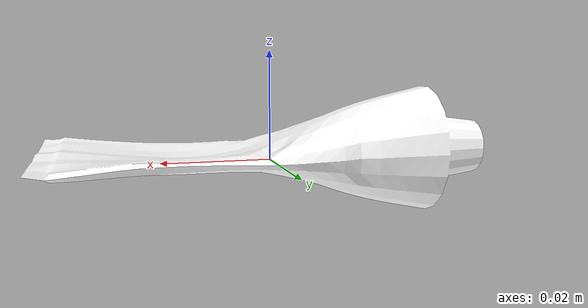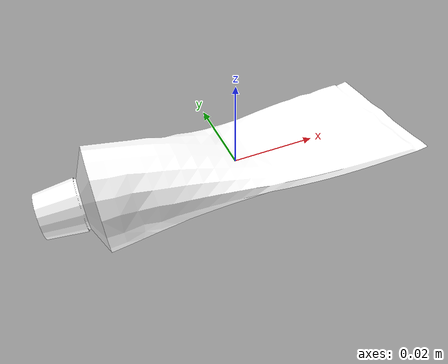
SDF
<?xml version='1.0'?>
<sdf version='1.6'>
  <model name='toothpaste'>
    <link name='link'>
      <self_collide>0</self_collide>
      <enable_wind>0</enable_wind>
      <kinematic>0</kinematic>
      <pose frame=''>0 0 0 0 -0 0</pose>
      <gravity>1</gravity>
      <inertial>
        <mass>0.01</mass>
        <pose frame=''>0 0 0 0 -0 0</pose>
        <inertia>
          <ixx>1</ixx>
          <ixy>0</ixy>
          <ixz>0</ixz>
          <iyy>1</iyy>
          <iyz>0</iyz>
          <izz>1</izz>
        </inertia>
      </inertial>
      <visual name='visual'>
        <geometry>
          <mesh>
            <uri>model://toothpaste/model.dae</uri>
            <scale>0.5 0.6 0.7</scale>
          </mesh>
        </geometry>
        <material>
          <script>
            <uri>model://toothpaste/materials/scripts</uri>
            <uri>model://toothpaste/materials/textures</uri>
            <name>toothpastecolor</name>
          </script>
          <shader type='vertex'>
            <normal_map>__default__</normal_map>
          </shader>
          <ambient>1 1 1 1</ambient>
          <diffuse>1 1 1 1</diffuse>
          <specular>0 0 0 1</specular>
          <emissive>0 0 0 1</emissive>
        </material>
        <pose frame=''>-0.005 0 -0.011 0 -0 0</pose>
        <transparency>0</transparency>
        <cast_shadows>1</cast_shadows>
      </visual>
      <collision name='collision_0'>
        <laser_retro>0</laser_retro>
        <max_contacts>10</max_contacts>
        <pose frame=''>0 0 0 0 -0 0</pose>
        <geometry>
          <box>
            <size>0.084 0.02 0.018</size>
          </box>
        </geometry>
        <surface>
          <friction>
            <ode>
              <mu>1</mu>
              <mu2>1</mu2>
            </ode>
            <torsional>
              <coefficient>1</coefficient>
              <patch_radius>0</patch_radius>
              <surface_radius>0</surface_radius>
              <use_patch_radius>1</use_patch_radius>
              <ode>
                <slip>0</slip>
              </ode>
            </torsional>
          </friction>
          <bounce>
            <restitution_coefficient>0</restitution_coefficient>
            <threshold>1e+06</threshold>
          </bounce>
          <contact>
            <collide_without_contact>0</collide_without_contact>
            <collide_without_contact_bitmask>1</collide_without_contact_bitmask>
            <collide_bitmask>1</collide_bitmask>
            <ode>
              <soft_cfm>0</soft_cfm>
              <soft_erp>0.2</soft_erp>
              <kp>1e+13</kp>
              <kd>1</kd>
              <max_vel>0.01</max_vel>
              <min_depth>0</min_depth>
            </ode>
            <bullet>
              <split_impulse>1</split_impulse>
              <split_impulse_penetration_threshold>-0.01</split_impulse_penetration_threshold>
              <soft_cfm>0</soft_cfm>
              <soft_erp>0.2</soft_erp>
              <kp>1e+13</kp>
              <kd>1</kd>
            </bullet>
          </contact>
        </surface>
      </collision>
    </link>
    <allow_auto_disable>1</allow_auto_disable>
  </model>
</sdf>
